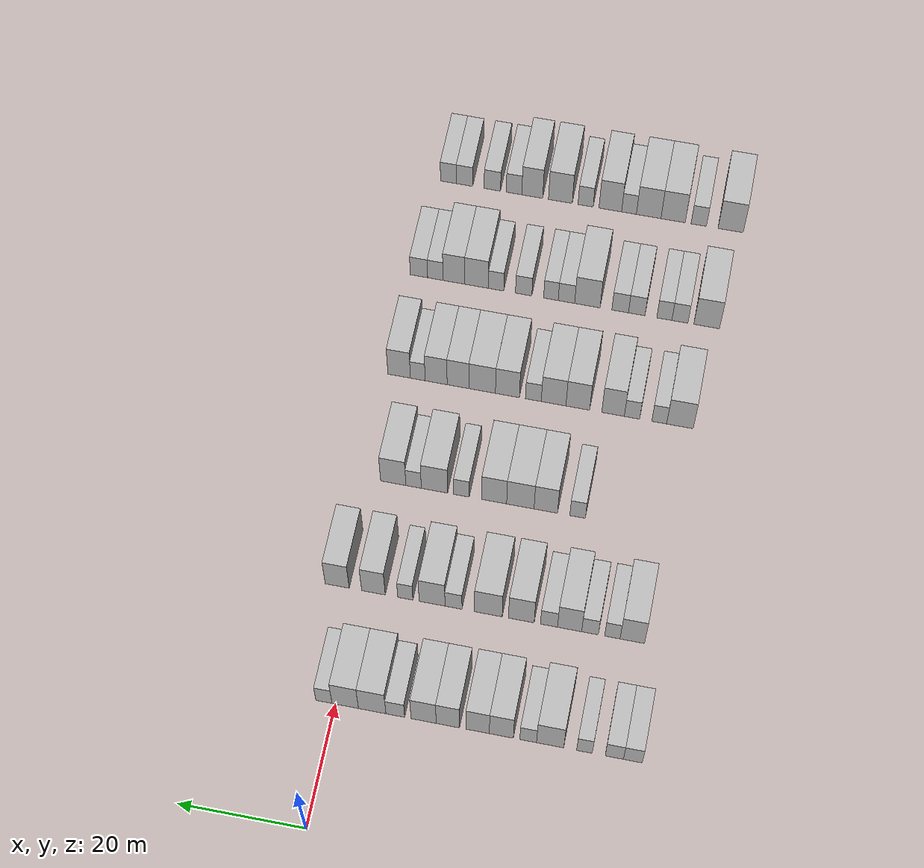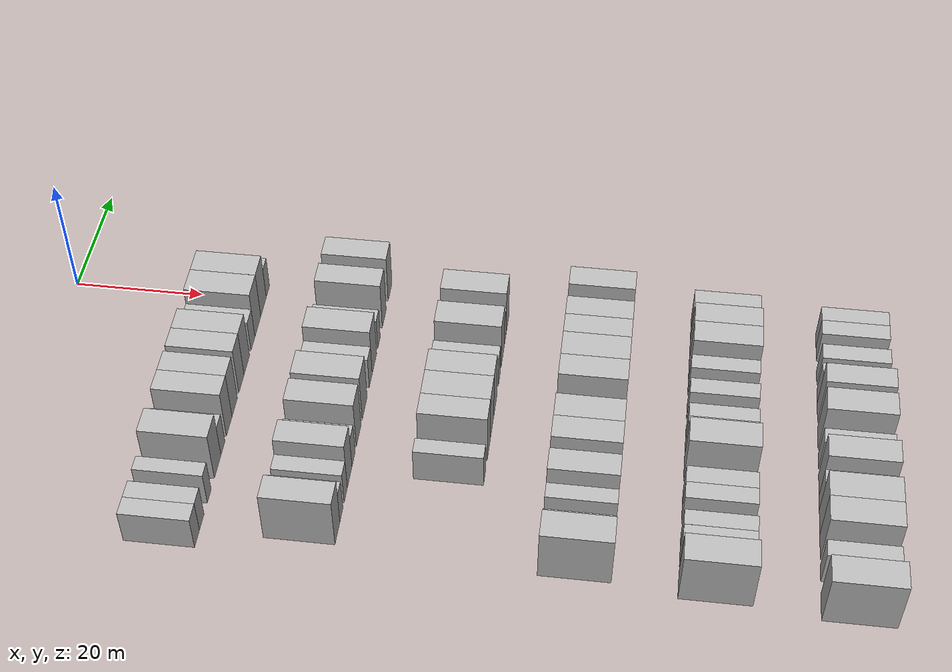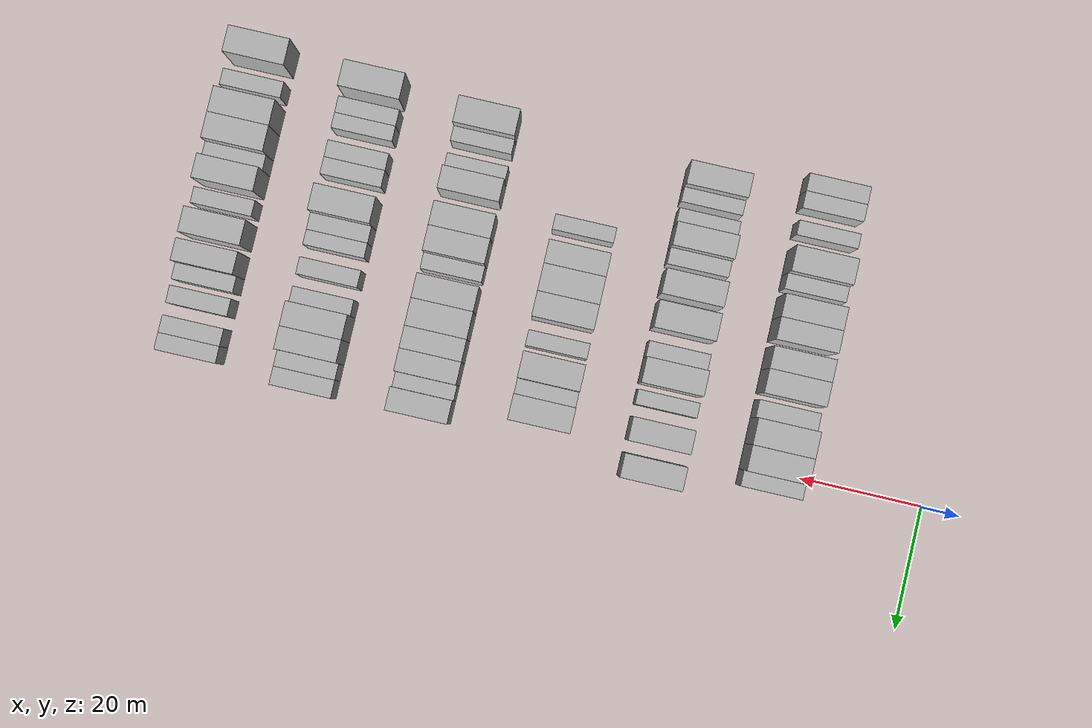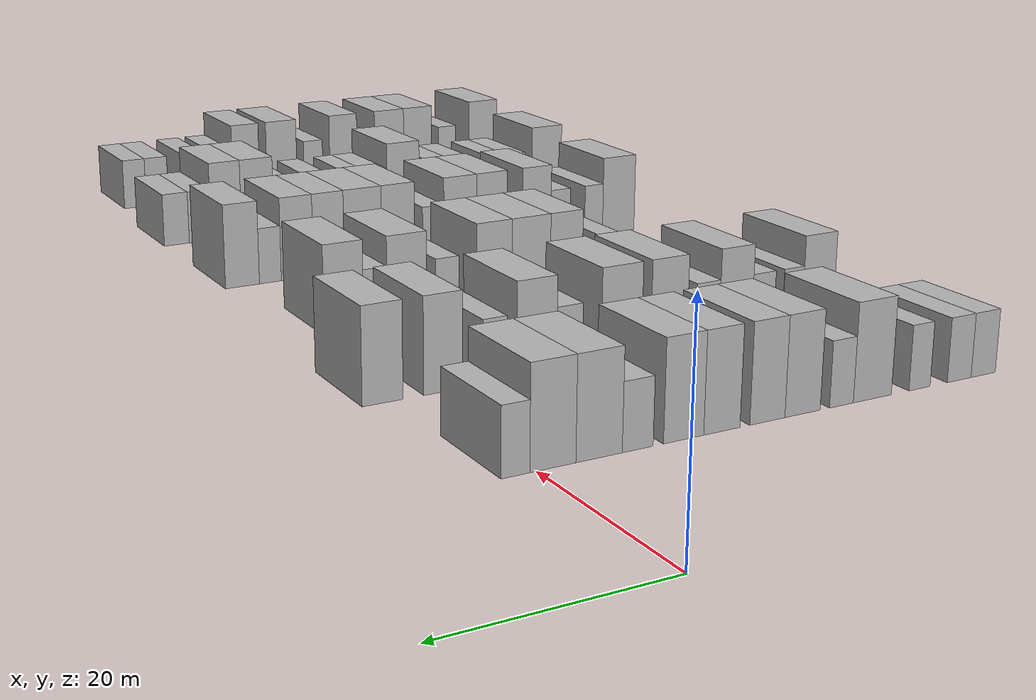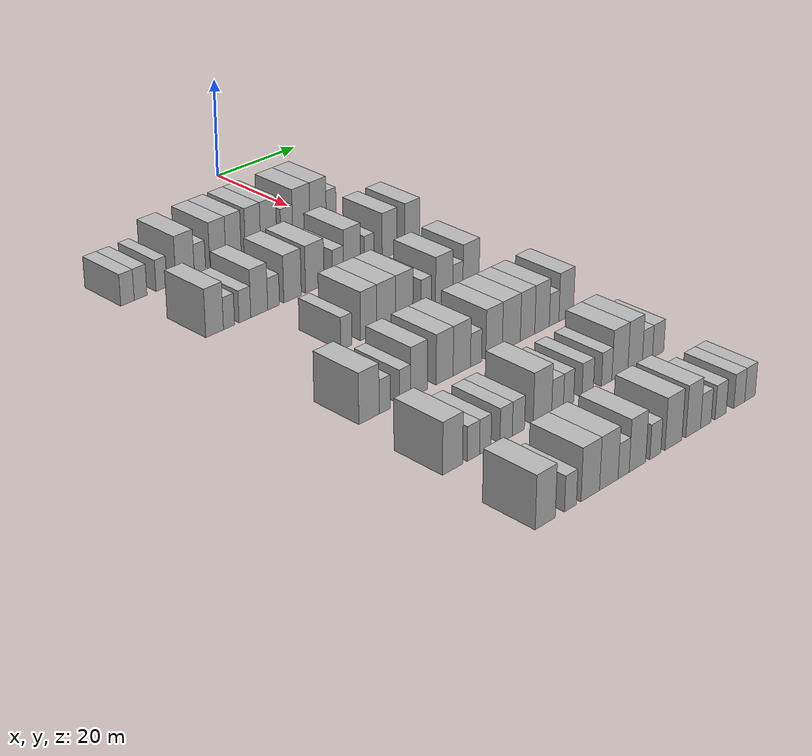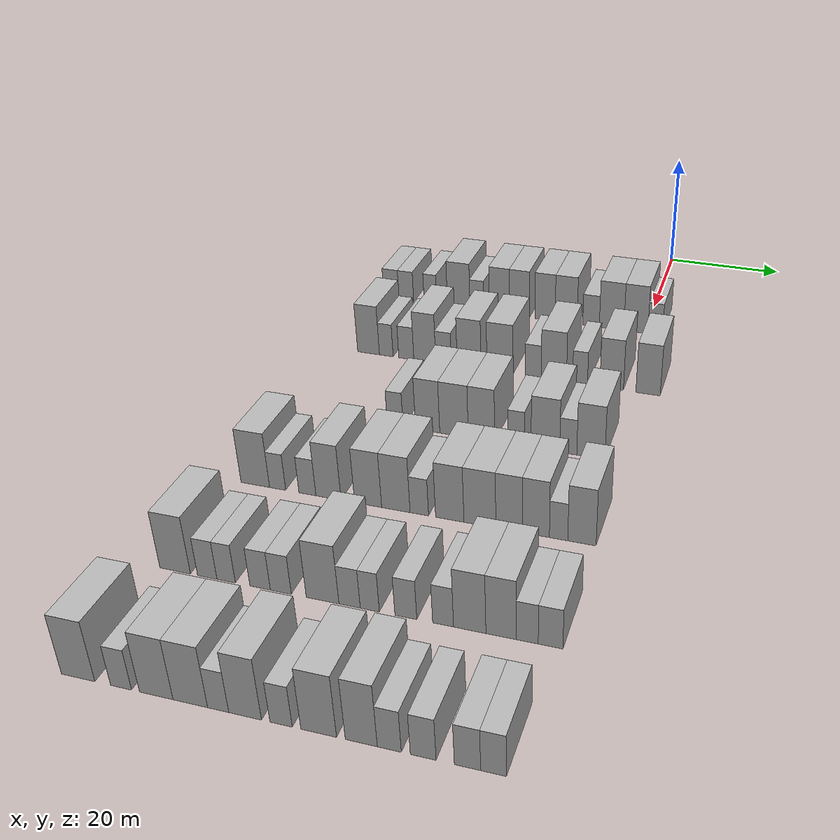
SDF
<sdf version="1.6">
 <world name="default">
  <model name="building_81">
   <static>1</static>
   <pose>25.0000 -46.2930 0 0.000000 0.000000 0.000000</pose>
   <link name="link">
    <pose>0 0 3.00 0 0 0</pose>
    <collision name="collision"><geometry><box><size>10.0000 2.9089 6.0000</size></box></geometry></collision>
    <visual name="visual">
     <cast_shadows>0</cast_shadows>
     <geometry><box><size>10.0000 2.9089 6.0000</size></box></geometry>
     <material>
      <script>
       <uri>model://HANNAS_wall/materials/scripts</uri>
       <uri>model://HANNAS_wall/materials/textures</uri>
       <name>vrc/HANNAS_wall</name>
      </script>
     </material>
    </visual>
   </link>
  </model>
  <model name="building_82">
   <static>1</static>
   <pose>25.0000 -43.4327 0 0.000000 0.000000 0.000000</pose>
   <link name="link">
    <pose>0 0 3.00 0 0 0</pose>
    <collision name="collision"><geometry><box><size>10.0000 2.8117 6.0000</size></box></geometry></collision>
    <visual name="visual">
     <cast_shadows>0</cast_shadows>
     <geometry><box><size>10.0000 2.8117 6.0000</size></box></geometry>
     <material>
      <script>
       <uri>model://HANNAS_wall/materials/scripts</uri>
       <uri>model://HANNAS_wall/materials/textures</uri>
       <name>vrc/HANNAS_wall</name>
      </script>
     </material>
    </visual>
   </link>
  </model>
  <model name="building_83">
   <static>1</static>
   <pose>25.0000 -38.8175 0 0.000000 0.000000 0.000000</pose>
   <link name="link">
    <pose>0 0 3.00 0 0 0</pose>
    <collision name="collision"><geometry><box><size>10.0000 2.4189 6.0000</size></box></geometry></collision>
    <visual name="visual">
     <cast_shadows>0</cast_shadows>
     <geometry><box><size>10.0000 2.4189 6.0000</size></box></geometry>
     <material>
      <script>
       <uri>model://HANNAS_wall/materials/scripts</uri>
       <uri>model://HANNAS_wall/materials/textures</uri>
       <name>vrc/HANNAS_wall</name>
      </script>
     </material>
    </visual>
   </link>
  </model>
  <model name="building_84">
   <static>1</static>
   <pose>25.0000 -33.4978 0 0.000000 0.000000 0.000000</pose>
   <link name="link">
    <pose>0 0 4.50 0 0 0</pose>
    <collision name="collision"><geometry><box><size>10.0000 4.2204 9.0000</size></box></geometry></collision>
    <visual name="visual">
     <cast_shadows>0</cast_shadows>
     <geometry><box><size>10.0000 4.2204 9.0000</size></box></geometry>
     <material>
      <script>
       <uri>model://HANNAS_wall/materials/scripts</uri>
       <uri>model://HANNAS_wall/materials/textures</uri>
       <name>vrc/HANNAS_wall</name>
      </script>
     </material>
    </visual>
   </link>
  </model>
  <model name="building_85">
   <static>1</static>
   <pose>25.0000 -30.0917 0 0.000000 0.000000 0.000000</pose>
   <link name="link">
    <pose>0 0 3.00 0 0 0</pose>
    <collision name="collision"><geometry><box><size>10.0000 2.5917 6.0000</size></box></geometry></collision>
    <visual name="visual">
     <cast_shadows>0</cast_shadows>
     <geometry><box><size>10.0000 2.5917 6.0000</size></box></geometry>
     <material>
      <script>
       <uri>model://HANNAS_wall/materials/scripts</uri>
       <uri>model://HANNAS_wall/materials/textures</uri>
       <name>vrc/HANNAS_wall</name>
      </script>
     </material>
    </visual>
   </link>
  </model>
  <model name="building_86">
   <static>1</static>
   <pose>25.0000 -25.9251 0 0.000000 0.000000 0.000000</pose>
   <link name="link">
    <pose>0 0 4.50 0 0 0</pose>
    <collision name="collision"><geometry><box><size>10.0000 3.7415 9.0000</size></box></geometry></collision>
    <visual name="visual">
     <cast_shadows>0</cast_shadows>
     <geometry><box><size>10.0000 3.7415 9.0000</size></box></geometry>
     <material>
      <script>
       <uri>model://HANNAS_wall/materials/scripts</uri>
       <uri>model://HANNAS_wall/materials/textures</uri>
       <name>vrc/HANNAS_wall</name>
      </script>
     </material>
    </visual>
   </link>
  </model>
  <model name="building_87">
   <static>1</static>
   <pose>25.0000 -22.2353 0 0.000000 0.000000 0.000000</pose>
   <link name="link">
    <pose>0 0 4.50 0 0 0</pose>
    <collision name="collision"><geometry><box><size>10.0000 3.6381 9.0000</size></box></geometry></collision>
    <visual name="visual">
     <cast_shadows>0</cast_shadows>
     <geometry><box><size>10.0000 3.6381 9.0000</size></box></geometry>
     <material>
      <script>
       <uri>model://HANNAS_wall/materials/scripts</uri>
       <uri>model://HANNAS_wall/materials/textures</uri>
       <name>vrc/HANNAS_wall</name>
      </script>
     </material>
    </visual>
   </link>
  </model>
  <model name="building_88">
   <static>1</static>
   <pose>25.0000 -17.5931 0 0.000000 0.000000 0.000000</pose>
   <link name="link">
    <pose>0 0 4.50 0 0 0</pose>
    <collision name="collision"><geometry><box><size>10.0000 3.6464 9.0000</size></box></geometry></collision>
    <visual name="visual">
     <cast_shadows>0</cast_shadows>
     <geometry><box><size>10.0000 3.6464 9.0000</size></box></geometry>
     <material>
      <script>
       <uri>model://HANNAS_wall/materials/scripts</uri>
       <uri>model://HANNAS_wall/materials/textures</uri>
       <name>vrc/HANNAS_wall</name>
      </script>
     </material>
    </visual>
   </link>
  </model>
  <model name="building_89">
   <static>1</static>
   <pose>25.0000 -13.7994 0 0.000000 0.000000 0.000000</pose>
   <link name="link">
    <pose>0 0 4.50 0 0 0</pose>
    <collision name="collision"><geometry><box><size>10.0000 3.9409 9.0000</size></box></geometry></collision>
    <visual name="visual">
     <cast_shadows>0</cast_shadows>
     <geometry><box><size>10.0000 3.9409 9.0000</size></box></geometry>
     <material>
      <script>
       <uri>model://HANNAS_wall/materials/scripts</uri>
       <uri>model://HANNAS_wall/materials/textures</uri>
       <name>vrc/HANNAS_wall</name>
      </script>
     </material>
    </visual>
   </link>
  </model>
  <model name="building_90">
   <static>1</static>
   <pose>25.0000 -9.3594 0 0.000000 0.000000 0.000000</pose>
   <link name="link">
    <pose>0 0 3.00 0 0 0</pose>
    <collision name="collision"><geometry><box><size>10.0000 2.9392 6.0000</size></box></geometry></collision>
    <visual name="visual">
     <cast_shadows>0</cast_shadows>
     <geometry><box><size>10.0000 2.9392 6.0000</size></box></geometry>
     <material>
      <script>
       <uri>model://HANNAS_wall/materials/scripts</uri>
       <uri>model://HANNAS_wall/materials/textures</uri>
       <name>vrc/HANNAS_wall</name>
      </script>
     </material>
    </visual>
   </link>
  </model>
  <model name="building_91">
   <static>1</static>
   <pose>25.0000 -5.7333 0 0.000000 0.000000 0.000000</pose>
   <link name="link">
    <pose>0 0 4.50 0 0 0</pose>
    <collision name="collision"><geometry><box><size>10.0000 4.3129 9.0000</size></box></geometry></collision>
    <visual name="visual">
     <cast_shadows>0</cast_shadows>
     <geometry><box><size>10.0000 4.3129 9.0000</size></box></geometry>
     <material>
      <script>
       <uri>model://HANNAS_wall/materials/scripts</uri>
       <uri>model://HANNAS_wall/materials/textures</uri>
       <name>vrc/HANNAS_wall</name>
      </script>
     </material>
    </visual>
   </link>
  </model>
  <model name="building_92">
   <static>1</static>
   <pose>25.0000 -1.4949 0 0.000000 0.000000 0.000000</pose>
   <link name="link">
    <pose>0 0 4.50 0 0 0</pose>
    <collision name="collision"><geometry><box><size>10.0000 4.1638 9.0000</size></box></geometry></collision>
    <visual name="visual">
     <cast_shadows>0</cast_shadows>
     <geometry><box><size>10.0000 4.1638 9.0000</size></box></geometry>
     <material>
      <script>
       <uri>model://HANNAS_wall/materials/scripts</uri>
       <uri>model://HANNAS_wall/materials/textures</uri>
       <name>vrc/HANNAS_wall</name>
      </script>
     </material>
    </visual>
   </link>
  </model>
  <model name="building_93">
   <static>1</static>
   <pose>25.0000 1.8575 0 0.000000 0.000000 0.000000</pose>
   <link name="link">
    <pose>0 0 3.00 0 0 0</pose>
    <collision name="collision"><geometry><box><size>10.0000 2.5411 6.0000</size></box></geometry></collision>
    <visual name="visual">
     <cast_shadows>0</cast_shadows>
     <geometry><box><size>10.0000 2.5411 6.0000</size></box></geometry>
     <material>
      <script>
       <uri>model://HANNAS_wall/materials/scripts</uri>
       <uri>model://HANNAS_wall/materials/textures</uri>
       <name>vrc/HANNAS_wall</name>
      </script>
     </material>
    </visual>
   </link>
  </model>
  <model name="building_262">
   <static>1</static>
   <pose>44.0000 -43.0210 0 0.000000 0.000000 0.000000</pose>
   <link name="link">
    <pose>0 0 4.50 0 0 0</pose>
    <collision name="collision"><geometry><box><size>10.0000 3.8725 9.0000</size></box></geometry></collision>
    <visual name="visual">
     <cast_shadows>0</cast_shadows>
     <geometry><box><size>10.0000 3.8725 9.0000</size></box></geometry>
     <material>
      <script>
       <uri>model://HANNAS_wall/materials/scripts</uri>
       <uri>model://HANNAS_wall/materials/textures</uri>
       <name>vrc/HANNAS_wall</name>
      </script>
     </material>
    </visual>
   </link>
  </model>
  <model name="building_263">
   <static>1</static>
   <pose>44.0000 -39.8704 0 0.000000 0.000000 0.000000</pose>
   <link name="link">
    <pose>0 0 3.00 0 0 0</pose>
    <collision name="collision"><geometry><box><size>10.0000 2.4286 6.0000</size></box></geometry></collision>
    <visual name="visual">
     <cast_shadows>0</cast_shadows>
     <geometry><box><size>10.0000 2.4286 6.0000</size></box></geometry>
     <material>
      <script>
       <uri>model://HANNAS_wall/materials/scripts</uri>
       <uri>model://HANNAS_wall/materials/textures</uri>
       <name>vrc/HANNAS_wall</name>
      </script>
     </material>
    </visual>
   </link>
  </model>
  <model name="building_264">
   <static>1</static>
   <pose>44.0000 -36.3331 0 0.000000 0.000000 0.000000</pose>
   <link name="link">
    <pose>0 0 3.00 0 0 0</pose>
    <collision name="collision"><geometry><box><size>10.0000 2.6460 6.0000</size></box></geometry></collision>
    <visual name="visual">
     <cast_shadows>0</cast_shadows>
     <geometry><box><size>10.0000 2.6460 6.0000</size></box></geometry>
     <material>
      <script>
       <uri>model://HANNAS_wall/materials/scripts</uri>
       <uri>model://HANNAS_wall/materials/textures</uri>
       <name>vrc/HANNAS_wall</name>
      </script>
     </material>
    </visual>
   </link>
  </model>
  <model name="building_265">
   <static>1</static>
   <pose>44.0000 -33.0952 0 0.000000 0.000000 0.000000</pose>
   <link name="link">
    <pose>0 0 4.50 0 0 0</pose>
    <collision name="collision"><geometry><box><size>10.0000 3.8299 9.0000</size></box></geometry></collision>
    <visual name="visual">
     <cast_shadows>0</cast_shadows>
     <geometry><box><size>10.0000 3.8299 9.0000</size></box></geometry>
     <material>
      <script>
       <uri>model://HANNAS_wall/materials/scripts</uri>
       <uri>model://HANNAS_wall/materials/textures</uri>
       <name>vrc/HANNAS_wall</name>
      </script>
     </material>
    </visual>
   </link>
  </model>
  <model name="building_266">
   <static>1</static>
   <pose>44.0000 -29.8294 0 0.000000 0.000000 0.000000</pose>
   <link name="link">
    <pose>0 0 3.00 0 0 0</pose>
    <collision name="collision"><geometry><box><size>10.0000 2.7018 6.0000</size></box></geometry></collision>
    <visual name="visual">
     <cast_shadows>0</cast_shadows>
     <geometry><box><size>10.0000 2.7018 6.0000</size></box></geometry>
     <material>
      <script>
       <uri>model://HANNAS_wall/materials/scripts</uri>
       <uri>model://HANNAS_wall/materials/textures</uri>
       <name>vrc/HANNAS_wall</name>
      </script>
     </material>
    </visual>
   </link>
  </model>
  <model name="building_267">
   <static>1</static>
   <pose>44.0000 -25.4348 0 0.000000 0.000000 0.000000</pose>
   <link name="link">
    <pose>0 0 4.50 0 0 0</pose>
    <collision name="collision"><geometry><box><size>10.0000 4.0874 9.0000</size></box></geometry></collision>
    <visual name="visual">
     <cast_shadows>0</cast_shadows>
     <geometry><box><size>10.0000 4.0874 9.0000</size></box></geometry>
     <material>
      <script>
       <uri>model://HANNAS_wall/materials/scripts</uri>
       <uri>model://HANNAS_wall/materials/textures</uri>
       <name>vrc/HANNAS_wall</name>
      </script>
     </material>
    </visual>
   </link>
  </model>
  <model name="building_268">
   <static>1</static>
   <pose>44.0000 -20.1846 0 0.000000 0.000000 0.000000</pose>
   <link name="link">
    <pose>0 0 4.50 0 0 0</pose>
    <collision name="collision"><geometry><box><size>10.0000 4.4129 9.0000</size></box></geometry></collision>
    <visual name="visual">
     <cast_shadows>0</cast_shadows>
     <geometry><box><size>10.0000 4.4129 9.0000</size></box></geometry>
     <material>
      <script>
       <uri>model://HANNAS_wall/materials/scripts</uri>
       <uri>model://HANNAS_wall/materials/textures</uri>
       <name>vrc/HANNAS_wall</name>
      </script>
     </material>
    </visual>
   </link>
  </model>
  <model name="building_269">
   <static>1</static>
   <pose>44.0000 -14.6228 0 0.000000 0.000000 0.000000</pose>
   <link name="link">
    <pose>0 0 3.00 0 0 0</pose>
    <collision name="collision"><geometry><box><size>10.0000 2.7107 6.0000</size></box></geometry></collision>
    <visual name="visual">
     <cast_shadows>0</cast_shadows>
     <geometry><box><size>10.0000 2.7107 6.0000</size></box></geometry>
     <material>
      <script>
       <uri>model://HANNAS_wall/materials/scripts</uri>
       <uri>model://HANNAS_wall/materials/textures</uri>
       <name>vrc/HANNAS_wall</name>
      </script>
     </material>
    </visual>
   </link>
  </model>
  <model name="building_270">
   <static>1</static>
   <pose>44.0000 -11.1909 0 0.000000 0.000000 0.000000</pose>
   <link name="link">
    <pose>0 0 4.50 0 0 0</pose>
    <collision name="collision"><geometry><box><size>10.0000 4.1532 9.0000</size></box></geometry></collision>
    <visual name="visual">
     <cast_shadows>0</cast_shadows>
     <geometry><box><size>10.0000 4.1532 9.0000</size></box></geometry>
     <material>
      <script>
       <uri>model://HANNAS_wall/materials/scripts</uri>
       <uri>model://HANNAS_wall/materials/textures</uri>
       <name>vrc/HANNAS_wall</name>
      </script>
     </material>
    </visual>
   </link>
  </model>
  <model name="building_271">
   <static>1</static>
   <pose>44.0000 -6.8982 0 0.000000 0.000000 0.000000</pose>
   <link name="link">
    <pose>0 0 3.00 0 0 0</pose>
    <collision name="collision"><geometry><box><size>10.0000 2.4321 6.0000</size></box></geometry></collision>
    <visual name="visual">
     <cast_shadows>0</cast_shadows>
     <geometry><box><size>10.0000 2.4321 6.0000</size></box></geometry>
     <material>
      <script>
       <uri>model://HANNAS_wall/materials/scripts</uri>
       <uri>model://HANNAS_wall/materials/textures</uri>
       <name>vrc/HANNAS_wall</name>
      </script>
     </material>
    </visual>
   </link>
  </model>
  <model name="building_272">
   <static>1</static>
   <pose>44.0000 -1.7785 0 0.000000 0.000000 0.000000</pose>
   <link name="link">
    <pose>0 0 4.50 0 0 0</pose>
    <collision name="collision"><geometry><box><size>10.0000 3.8074 9.0000</size></box></geometry></collision>
    <visual name="visual">
     <cast_shadows>0</cast_shadows>
     <geometry><box><size>10.0000 3.8074 9.0000</size></box></geometry>
     <material>
      <script>
       <uri>model://HANNAS_wall/materials/scripts</uri>
       <uri>model://HANNAS_wall/materials/textures</uri>
       <name>vrc/HANNAS_wall</name>
      </script>
     </material>
    </visual>
   </link>
  </model>
  <model name="building_273">
   <static>1</static>
   <pose>44.0000 4.0592 0 0.000000 0.000000 0.000000</pose>
   <link name="link">
    <pose>0 0 4.50 0 0 0</pose>
    <collision name="collision"><geometry><box><size>10.0000 3.8681 9.0000</size></box></geometry></collision>
    <visual name="visual">
     <cast_shadows>0</cast_shadows>
     <geometry><box><size>10.0000 3.8681 9.0000</size></box></geometry>
     <material>
      <script>
       <uri>model://HANNAS_wall/materials/scripts</uri>
       <uri>model://HANNAS_wall/materials/textures</uri>
       <name>vrc/HANNAS_wall</name>
      </script>
     </material>
    </visual>
   </link>
  </model>
  <model name="building_429">
   <static>1</static>
   <pose>63.0000 -30.9926 0 0.000000 0.000000 0.000000</pose>
   <link name="link">
    <pose>0 0 3.00 0 0 0</pose>
    <collision name="collision"><geometry><box><size>10.0000 2.5227 6.0000</size></box></geometry></collision>
    <visual name="visual">
     <cast_shadows>0</cast_shadows>
     <geometry><box><size>10.0000 2.5227 6.0000</size></box></geometry>
     <material>
      <script>
       <uri>model://HANNAS_wall/materials/scripts</uri>
       <uri>model://HANNAS_wall/materials/textures</uri>
       <name>vrc/HANNAS_wall</name>
      </script>
     </material>
    </visual>
   </link>
  </model>
  <model name="building_430">
   <static>1</static>
   <pose>63.0000 -25.8225 0 0.000000 0.000000 0.000000</pose>
   <link name="link">
    <pose>0 0 4.50 0 0 0</pose>
    <collision name="collision"><geometry><box><size>10.0000 3.8176 9.0000</size></box></geometry></collision>
    <visual name="visual">
     <cast_shadows>0</cast_shadows>
     <geometry><box><size>10.0000 3.8176 9.0000</size></box></geometry>
     <material>
      <script>
       <uri>model://HANNAS_wall/materials/scripts</uri>
       <uri>model://HANNAS_wall/materials/textures</uri>
       <name>vrc/HANNAS_wall</name>
      </script>
     </material>
    </visual>
   </link>
  </model>
  <model name="building_431">
   <static>1</static>
   <pose>63.0000 -21.6790 0 0.000000 0.000000 0.000000</pose>
   <link name="link">
    <pose>0 0 4.50 0 0 0</pose>
    <collision name="collision"><geometry><box><size>10.0000 4.4694 9.0000</size></box></geometry></collision>
    <visual name="visual">
     <cast_shadows>0</cast_shadows>
     <geometry><box><size>10.0000 4.4694 9.0000</size></box></geometry>
     <material>
      <script>
       <uri>model://HANNAS_wall/materials/scripts</uri>
       <uri>model://HANNAS_wall/materials/textures</uri>
       <name>vrc/HANNAS_wall</name>
      </script>
     </material>
    </visual>
   </link>
  </model>
  <model name="building_432">
   <static>1</static>
   <pose>63.0000 -17.4008 0 0.000000 0.000000 0.000000</pose>
   <link name="link">
    <pose>0 0 4.50 0 0 0</pose>
    <collision name="collision"><geometry><box><size>10.0000 4.0870 9.0000</size></box></geometry></collision>
    <visual name="visual">
     <cast_shadows>0</cast_shadows>
     <geometry><box><size>10.0000 4.0870 9.0000</size></box></geometry>
     <material>
      <script>
       <uri>model://HANNAS_wall/materials/scripts</uri>
       <uri>model://HANNAS_wall/materials/textures</uri>
       <name>vrc/HANNAS_wall</name>
      </script>
     </material>
    </visual>
   </link>
  </model>
  <model name="building_433">
   <static>1</static>
   <pose>63.0000 -12.0814 0 0.000000 0.000000 0.000000</pose>
   <link name="link">
    <pose>0 0 3.00 0 0 0</pose>
    <collision name="collision"><geometry><box><size>10.0000 2.5519 6.0000</size></box></geometry></collision>
    <visual name="visual">
     <cast_shadows>0</cast_shadows>
     <geometry><box><size>10.0000 2.5519 6.0000</size></box></geometry>
     <material>
      <script>
       <uri>model://HANNAS_wall/materials/scripts</uri>
       <uri>model://HANNAS_wall/materials/textures</uri>
       <name>vrc/HANNAS_wall</name>
      </script>
     </material>
    </visual>
   </link>
  </model>
  <model name="building_434">
   <static>1</static>
   <pose>63.0000 -7.6488 0 0.000000 0.000000 0.000000</pose>
   <link name="link">
    <pose>0 0 4.50 0 0 0</pose>
    <collision name="collision"><geometry><box><size>10.0000 4.3131 9.0000</size></box></geometry></collision>
    <visual name="visual">
     <cast_shadows>0</cast_shadows>
     <geometry><box><size>10.0000 4.3131 9.0000</size></box></geometry>
     <material>
      <script>
       <uri>model://HANNAS_wall/materials/scripts</uri>
       <uri>model://HANNAS_wall/materials/textures</uri>
       <name>vrc/HANNAS_wall</name>
      </script>
     </material>
    </visual>
   </link>
  </model>
  <model name="building_435">
   <static>1</static>
   <pose>63.0000 -4.2244 0 0.000000 0.000000 0.000000</pose>
   <link name="link">
    <pose>0 0 3.00 0 0 0</pose>
    <collision name="collision"><geometry><box><size>10.0000 2.5357 6.0000</size></box></geometry></collision>
    <visual name="visual">
     <cast_shadows>0</cast_shadows>
     <geometry><box><size>10.0000 2.5357 6.0000</size></box></geometry>
     <material>
      <script>
       <uri>model://HANNAS_wall/materials/scripts</uri>
       <uri>model://HANNAS_wall/materials/textures</uri>
       <name>vrc/HANNAS_wall</name>
      </script>
     </material>
    </visual>
   </link>
  </model>
  <model name="building_436">
   <static>1</static>
   <pose>63.0000 -0.8815 0 0.000000 0.000000 0.000000</pose>
   <link name="link">
    <pose>0 0 4.50 0 0 0</pose>
    <collision name="collision"><geometry><box><size>10.0000 4.1502 9.0000</size></box></geometry></collision>
    <visual name="visual">
     <cast_shadows>0</cast_shadows>
     <geometry><box><size>10.0000 4.1502 9.0000</size></box></geometry>
     <material>
      <script>
       <uri>model://HANNAS_wall/materials/scripts</uri>
       <uri>model://HANNAS_wall/materials/textures</uri>
       <name>vrc/HANNAS_wall</name>
      </script>
     </material>
    </visual>
   </link>
  </model>
  <model name="building_595">
   <static>1</static>
   <pose>82.0000 -44.5301 0 0.000000 0.000000 0.000000</pose>
   <link name="link">
    <pose>0 0 4.50 0 0 0</pose>
    <collision name="collision"><geometry><box><size>10.0000 4.3734 9.0000</size></box></geometry></collision>
    <visual name="visual">
     <cast_shadows>0</cast_shadows>
     <geometry><box><size>10.0000 4.3734 9.0000</size></box></geometry>
     <material>
      <script>
       <uri>model://HANNAS_wall/materials/scripts</uri>
       <uri>model://HANNAS_wall/materials/textures</uri>
       <name>vrc/HANNAS_wall</name>
      </script>
     </material>
    </visual>
   </link>
  </model>
  <model name="building_596">
   <static>1</static>
   <pose>82.0000 -41.1171 0 0.000000 0.000000 0.000000</pose>
   <link name="link">
    <pose>0 0 3.00 0 0 0</pose>
    <collision name="collision"><geometry><box><size>10.0000 2.4524 6.0000</size></box></geometry></collision>
    <visual name="visual">
     <cast_shadows>0</cast_shadows>
     <geometry><box><size>10.0000 2.4524 6.0000</size></box></geometry>
     <material>
      <script>
       <uri>model://HANNAS_wall/materials/scripts</uri>
       <uri>model://HANNAS_wall/materials/textures</uri>
       <name>vrc/HANNAS_wall</name>
      </script>
     </material>
    </visual>
   </link>
  </model>
  <model name="building_597">
   <static>1</static>
   <pose>82.0000 -36.6206 0 0.000000 0.000000 0.000000</pose>
   <link name="link">
    <pose>0 0 3.00 0 0 0</pose>
    <collision name="collision"><geometry><box><size>10.0000 2.5406 6.0000</size></box></geometry></collision>
    <visual name="visual">
     <cast_shadows>0</cast_shadows>
     <geometry><box><size>10.0000 2.5406 6.0000</size></box></geometry>
     <material>
      <script>
       <uri>model://HANNAS_wall/materials/scripts</uri>
       <uri>model://HANNAS_wall/materials/textures</uri>
       <name>vrc/HANNAS_wall</name>
      </script>
     </material>
    </visual>
   </link>
  </model>
  <model name="building_598">
   <static>1</static>
   <pose>82.0000 -33.4809 0 0.000000 0.000000 0.000000</pose>
   <link name="link">
    <pose>0 0 4.50 0 0 0</pose>
    <collision name="collision"><geometry><box><size>10.0000 3.7387 9.0000</size></box></geometry></collision>
    <visual name="visual">
     <cast_shadows>0</cast_shadows>
     <geometry><box><size>10.0000 3.7387 9.0000</size></box></geometry>
     <material>
      <script>
       <uri>model://HANNAS_wall/materials/scripts</uri>
       <uri>model://HANNAS_wall/materials/textures</uri>
       <name>vrc/HANNAS_wall</name>
      </script>
     </material>
    </visual>
   </link>
  </model>
  <model name="building_599">
   <static>1</static>
   <pose>82.0000 -27.6373 0 0.000000 0.000000 0.000000</pose>
   <link name="link">
    <pose>0 0 4.50 0 0 0</pose>
    <collision name="collision"><geometry><box><size>10.0000 3.9487 9.0000</size></box></geometry></collision>
    <visual name="visual">
     <cast_shadows>0</cast_shadows>
     <geometry><box><size>10.0000 3.9487 9.0000</size></box></geometry>
     <material>
      <script>
       <uri>model://HANNAS_wall/materials/scripts</uri>
       <uri>model://HANNAS_wall/materials/textures</uri>
       <name>vrc/HANNAS_wall</name>
      </script>
     </material>
    </visual>
   </link>
  </model>
  <model name="building_600">
   <static>1</static>
   <pose>82.0000 -23.6133 0 0.000000 0.000000 0.000000</pose>
   <link name="link">
    <pose>0 0 4.50 0 0 0</pose>
    <collision name="collision"><geometry><box><size>10.0000 4.0992 9.0000</size></box></geometry></collision>
    <visual name="visual">
     <cast_shadows>0</cast_shadows>
     <geometry><box><size>10.0000 4.0992 9.0000</size></box></geometry>
     <material>
      <script>
       <uri>model://HANNAS_wall/materials/scripts</uri>
       <uri>model://HANNAS_wall/materials/textures</uri>
       <name>vrc/HANNAS_wall</name>
      </script>
     </material>
    </visual>
   </link>
  </model>
  <model name="building_601">
   <static>1</static>
   <pose>82.0000 -20.2449 0 0.000000 0.000000 0.000000</pose>
   <link name="link">
    <pose>0 0 3.00 0 0 0</pose>
    <collision name="collision"><geometry><box><size>10.0000 2.6376 6.0000</size></box></geometry></collision>
    <visual name="visual">
     <cast_shadows>0</cast_shadows>
     <geometry><box><size>10.0000 2.6376 6.0000</size></box></geometry>
     <material>
      <script>
       <uri>model://HANNAS_wall/materials/scripts</uri>
       <uri>model://HANNAS_wall/materials/textures</uri>
       <name>vrc/HANNAS_wall</name>
      </script>
     </material>
    </visual>
   </link>
  </model>
  <model name="building_602">
   <static>1</static>
   <pose>82.0000 -15.9267 0 0.000000 0.000000 0.000000</pose>
   <link name="link">
    <pose>0 0 4.50 0 0 0</pose>
    <collision name="collision"><geometry><box><size>10.0000 3.9989 9.0000</size></box></geometry></collision>
    <visual name="visual">
     <cast_shadows>0</cast_shadows>
     <geometry><box><size>10.0000 3.9989 9.0000</size></box></geometry>
     <material>
      <script>
       <uri>model://HANNAS_wall/materials/scripts</uri>
       <uri>model://HANNAS_wall/materials/textures</uri>
       <name>vrc/HANNAS_wall</name>
      </script>
     </material>
    </visual>
   </link>
  </model>
  <model name="building_603">
   <static>1</static>
   <pose>82.0000 -11.7010 0 0.000000 0.000000 0.000000</pose>
   <link name="link">
    <pose>0 0 4.50 0 0 0</pose>
    <collision name="collision"><geometry><box><size>10.0000 4.4524 9.0000</size></box></geometry></collision>
    <visual name="visual">
     <cast_shadows>0</cast_shadows>
     <geometry><box><size>10.0000 4.4524 9.0000</size></box></geometry>
     <material>
      <script>
       <uri>model://HANNAS_wall/materials/scripts</uri>
       <uri>model://HANNAS_wall/materials/textures</uri>
       <name>vrc/HANNAS_wall</name>
      </script>
     </material>
    </visual>
   </link>
  </model>
  <model name="building_604">
   <static>1</static>
   <pose>82.0000 -7.6648 0 0.000000 0.000000 0.000000</pose>
   <link name="link">
    <pose>0 0 4.50 0 0 0</pose>
    <collision name="collision"><geometry><box><size>10.0000 3.6200 9.0000</size></box></geometry></collision>
    <visual name="visual">
     <cast_shadows>0</cast_shadows>
     <geometry><box><size>10.0000 3.6200 9.0000</size></box></geometry>
     <material>
      <script>
       <uri>model://HANNAS_wall/materials/scripts</uri>
       <uri>model://HANNAS_wall/materials/textures</uri>
       <name>vrc/HANNAS_wall</name>
      </script>
     </material>
    </visual>
   </link>
  </model>
  <model name="building_605">
   <static>1</static>
   <pose>82.0000 -4.0126 0 0.000000 0.000000 0.000000</pose>
   <link name="link">
    <pose>0 0 4.50 0 0 0</pose>
    <collision name="collision"><geometry><box><size>10.0000 3.6843 9.0000</size></box></geometry></collision>
    <visual name="visual">
     <cast_shadows>0</cast_shadows>
     <geometry><box><size>10.0000 3.6843 9.0000</size></box></geometry>
     <material>
      <script>
       <uri>model://HANNAS_wall/materials/scripts</uri>
       <uri>model://HANNAS_wall/materials/textures</uri>
       <name>vrc/HANNAS_wall</name>
      </script>
     </material>
    </visual>
   </link>
  </model>
  <model name="building_606">
   <static>1</static>
   <pose>82.0000 -0.9319 0 0.000000 0.000000 0.000000</pose>
   <link name="link">
    <pose>0 0 3.00 0 0 0</pose>
    <collision name="collision"><geometry><box><size>10.0000 2.4771 6.0000</size></box></geometry></collision>
    <visual name="visual">
     <cast_shadows>0</cast_shadows>
     <geometry><box><size>10.0000 2.4771 6.0000</size></box></geometry>
     <material>
      <script>
       <uri>model://HANNAS_wall/materials/scripts</uri>
       <uri>model://HANNAS_wall/materials/textures</uri>
       <name>vrc/HANNAS_wall</name>
      </script>
     </material>
    </visual>
   </link>
  </model>
  <model name="building_607">
   <static>1</static>
   <pose>82.0000 2.1966 0 0.000000 0.000000 0.000000</pose>
   <link name="link">
    <pose>0 0 4.50 0 0 0</pose>
    <collision name="collision"><geometry><box><size>10.0000 3.7800 9.0000</size></box></geometry></collision>
    <visual name="visual">
     <cast_shadows>0</cast_shadows>
     <geometry><box><size>10.0000 3.7800 9.0000</size></box></geometry>
     <material>
      <script>
       <uri>model://HANNAS_wall/materials/scripts</uri>
       <uri>model://HANNAS_wall/materials/textures</uri>
       <name>vrc/HANNAS_wall</name>
      </script>
     </material>
    </visual>
   </link>
  </model>
  <model name="building_769">
   <static>1</static>
   <pose>101.0000 -46.0266 0 0.000000 0.000000 0.000000</pose>
   <link name="link">
    <pose>0 0 4.50 0 0 0</pose>
    <collision name="collision"><geometry><box><size>10.0000 4.3106 9.0000</size></box></geometry></collision>
    <visual name="visual">
     <cast_shadows>0</cast_shadows>
     <geometry><box><size>10.0000 4.3106 9.0000</size></box></geometry>
     <material>
      <script>
       <uri>model://HANNAS_wall/materials/scripts</uri>
       <uri>model://HANNAS_wall/materials/textures</uri>
       <name>vrc/HANNAS_wall</name>
      </script>
     </material>
    </visual>
   </link>
  </model>
  <model name="building_770">
   <static>1</static>
   <pose>101.0000 -41.5201 0 0.000000 0.000000 0.000000</pose>
   <link name="link">
    <pose>0 0 3.00 0 0 0</pose>
    <collision name="collision"><geometry><box><size>10.0000 2.7024 6.0000</size></box></geometry></collision>
    <visual name="visual">
     <cast_shadows>0</cast_shadows>
     <geometry><box><size>10.0000 2.7024 6.0000</size></box></geometry>
     <material>
      <script>
       <uri>model://HANNAS_wall/materials/scripts</uri>
       <uri>model://HANNAS_wall/materials/textures</uri>
       <name>vrc/HANNAS_wall</name>
      </script>
     </material>
    </visual>
   </link>
  </model>
  <model name="building_771">
   <static>1</static>
   <pose>101.0000 -38.9002 0 0.000000 0.000000 0.000000</pose>
   <link name="link">
    <pose>0 0 3.00 0 0 0</pose>
    <collision name="collision"><geometry><box><size>10.0000 2.5373 6.0000</size></box></geometry></collision>
    <visual name="visual">
     <cast_shadows>0</cast_shadows>
     <geometry><box><size>10.0000 2.5373 6.0000</size></box></geometry>
     <material>
      <script>
       <uri>model://HANNAS_wall/materials/scripts</uri>
       <uri>model://HANNAS_wall/materials/textures</uri>
       <name>vrc/HANNAS_wall</name>
      </script>
     </material>
    </visual>
   </link>
  </model>
  <model name="building_772">
   <static>1</static>
   <pose>101.0000 -34.2424 0 0.000000 0.000000 0.000000</pose>
   <link name="link">
    <pose>0 0 3.00 0 0 0</pose>
    <collision name="collision"><geometry><box><size>10.0000 2.7784 6.0000</size></box></geometry></collision>
    <visual name="visual">
     <cast_shadows>0</cast_shadows>
     <geometry><box><size>10.0000 2.7784 6.0000</size></box></geometry>
     <material>
      <script>
       <uri>model://HANNAS_wall/materials/scripts</uri>
       <uri>model://HANNAS_wall/materials/textures</uri>
       <name>vrc/HANNAS_wall</name>
      </script>
     </material>
    </visual>
   </link>
  </model>
  <model name="building_773">
   <static>1</static>
   <pose>101.0000 -31.4450 0 0.000000 0.000000 0.000000</pose>
   <link name="link">
    <pose>0 0 3.00 0 0 0</pose>
    <collision name="collision"><geometry><box><size>10.0000 2.8164 6.0000</size></box></geometry></collision>
    <visual name="visual">
     <cast_shadows>0</cast_shadows>
     <geometry><box><size>10.0000 2.8164 6.0000</size></box></geometry>
     <material>
      <script>
       <uri>model://HANNAS_wall/materials/scripts</uri>
       <uri>model://HANNAS_wall/materials/textures</uri>
       <name>vrc/HANNAS_wall</name>
      </script>
     </material>
    </visual>
   </link>
  </model>
  <model name="building_774">
   <static>1</static>
   <pose>101.0000 -25.8760 0 0.000000 0.000000 0.000000</pose>
   <link name="link">
    <pose>0 0 4.50 0 0 0</pose>
    <collision name="collision"><geometry><box><size>10.0000 4.3215 9.0000</size></box></geometry></collision>
    <visual name="visual">
     <cast_shadows>0</cast_shadows>
     <geometry><box><size>10.0000 4.3215 9.0000</size></box></geometry>
     <material>
      <script>
       <uri>model://HANNAS_wall/materials/scripts</uri>
       <uri>model://HANNAS_wall/materials/textures</uri>
       <name>vrc/HANNAS_wall</name>
      </script>
     </material>
    </visual>
   </link>
  </model>
  <model name="building_775">
   <static>1</static>
   <pose>101.0000 -22.3218 0 0.000000 0.000000 0.000000</pose>
   <link name="link">
    <pose>0 0 3.00 0 0 0</pose>
    <collision name="collision"><geometry><box><size>10.0000 2.7869 6.0000</size></box></geometry></collision>
    <visual name="visual">
     <cast_shadows>0</cast_shadows>
     <geometry><box><size>10.0000 2.7869 6.0000</size></box></geometry>
     <material>
      <script>
       <uri>model://HANNAS_wall/materials/scripts</uri>
       <uri>model://HANNAS_wall/materials/textures</uri>
       <name>vrc/HANNAS_wall</name>
      </script>
     </material>
    </visual>
   </link>
  </model>
  <model name="building_776">
   <static>1</static>
   <pose>101.0000 -19.6891 0 0.000000 0.000000 0.000000</pose>
   <link name="link">
    <pose>0 0 3.00 0 0 0</pose>
    <collision name="collision"><geometry><box><size>10.0000 2.4786 6.0000</size></box></geometry></collision>
    <visual name="visual">
     <cast_shadows>0</cast_shadows>
     <geometry><box><size>10.0000 2.4786 6.0000</size></box></geometry>
     <material>
      <script>
       <uri>model://HANNAS_wall/materials/scripts</uri>
       <uri>model://HANNAS_wall/materials/textures</uri>
       <name>vrc/HANNAS_wall</name>
      </script>
     </material>
    </visual>
   </link>
  </model>
  <model name="building_777">
   <static>1</static>
   <pose>101.0000 -15.0525 0 0.000000 0.000000 0.000000</pose>
   <link name="link">
    <pose>0 0 3.00 0 0 0</pose>
    <collision name="collision"><geometry><box><size>10.0000 2.7947 6.0000</size></box></geometry></collision>
    <visual name="visual">
     <cast_shadows>0</cast_shadows>
     <geometry><box><size>10.0000 2.7947 6.0000</size></box></geometry>
     <material>
      <script>
       <uri>model://HANNAS_wall/materials/scripts</uri>
       <uri>model://HANNAS_wall/materials/textures</uri>
       <name>vrc/HANNAS_wall</name>
      </script>
     </material>
    </visual>
   </link>
  </model>
  <model name="building_778">
   <static>1</static>
   <pose>101.0000 -10.3406 0 0.000000 0.000000 0.000000</pose>
   <link name="link">
    <pose>0 0 3.00 0 0 0</pose>
    <collision name="collision"><geometry><box><size>10.0000 2.6291 6.0000</size></box></geometry></collision>
    <visual name="visual">
     <cast_shadows>0</cast_shadows>
     <geometry><box><size>10.0000 2.6291 6.0000</size></box></geometry>
     <material>
      <script>
       <uri>model://HANNAS_wall/materials/scripts</uri>
       <uri>model://HANNAS_wall/materials/textures</uri>
       <name>vrc/HANNAS_wall</name>
      </script>
     </material>
    </visual>
   </link>
  </model>
  <model name="building_779">
   <static>1</static>
   <pose>101.0000 -7.0160 0 0.000000 0.000000 0.000000</pose>
   <link name="link">
    <pose>0 0 4.50 0 0 0</pose>
    <collision name="collision"><geometry><box><size>10.0000 4.0201 9.0000</size></box></geometry></collision>
    <visual name="visual">
     <cast_shadows>0</cast_shadows>
     <geometry><box><size>10.0000 4.0201 9.0000</size></box></geometry>
     <material>
      <script>
       <uri>model://HANNAS_wall/materials/scripts</uri>
       <uri>model://HANNAS_wall/materials/textures</uri>
       <name>vrc/HANNAS_wall</name>
      </script>
     </material>
    </visual>
   </link>
  </model>
  <model name="building_780">
   <static>1</static>
   <pose>101.0000 -3.1424 0 0.000000 0.000000 0.000000</pose>
   <link name="link">
    <pose>0 0 4.50 0 0 0</pose>
    <collision name="collision"><geometry><box><size>10.0000 3.7270 9.0000</size></box></geometry></collision>
    <visual name="visual">
     <cast_shadows>0</cast_shadows>
     <geometry><box><size>10.0000 3.7270 9.0000</size></box></geometry>
     <material>
      <script>
       <uri>model://HANNAS_wall/materials/scripts</uri>
       <uri>model://HANNAS_wall/materials/textures</uri>
       <name>vrc/HANNAS_wall</name>
      </script>
     </material>
    </visual>
   </link>
  </model>
  <model name="building_781">
   <static>1</static>
   <pose>101.0000 0.0449 0 0.000000 0.000000 0.000000</pose>
   <link name="link">
    <pose>0 0 3.00 0 0 0</pose>
    <collision name="collision"><geometry><box><size>10.0000 2.6476 6.0000</size></box></geometry></collision>
    <visual name="visual">
     <cast_shadows>0</cast_shadows>
     <geometry><box><size>10.0000 2.6476 6.0000</size></box></geometry>
     <material>
      <script>
       <uri>model://HANNAS_wall/materials/scripts</uri>
       <uri>model://HANNAS_wall/materials/textures</uri>
       <name>vrc/HANNAS_wall</name>
      </script>
     </material>
    </visual>
   </link>
  </model>
  <model name="building_782">
   <static>1</static>
   <pose>101.0000 2.8542 0 0.000000 0.000000 0.000000</pose>
   <link name="link">
    <pose>0 0 3.00 0 0 0</pose>
    <collision name="collision"><geometry><box><size>10.0000 2.9711 6.0000</size></box></geometry></collision>
    <visual name="visual">
     <cast_shadows>0</cast_shadows>
     <geometry><box><size>10.0000 2.9711 6.0000</size></box></geometry>
     <material>
      <script>
       <uri>model://HANNAS_wall/materials/scripts</uri>
       <uri>model://HANNAS_wall/materials/textures</uri>
       <name>vrc/HANNAS_wall</name>
      </script>
     </material>
    </visual>
   </link>
  </model>
  <model name="building_925">
   <static>1</static>
   <pose>120.0000 -47.2340 0 0.000000 0.000000 0.000000</pose>
   <link name="link">
    <pose>0 0 4.50 0 0 0</pose>
    <collision name="collision"><geometry><box><size>10.0000 4.3068 9.0000</size></box></geometry></collision>
    <visual name="visual">
     <cast_shadows>0</cast_shadows>
     <geometry><box><size>10.0000 4.3068 9.0000</size></box></geometry>
     <material>
      <script>
       <uri>model://HANNAS_wall/materials/scripts</uri>
       <uri>model://HANNAS_wall/materials/textures</uri>
       <name>vrc/HANNAS_wall</name>
      </script>
     </material>
    </visual>
   </link>
  </model>
  <model name="building_926">
   <static>1</static>
   <pose>120.0000 -41.7572 0 0.000000 0.000000 0.000000</pose>
   <link name="link">
    <pose>0 0 3.00 0 0 0</pose>
    <collision name="collision"><geometry><box><size>10.0000 2.6468 6.0000</size></box></geometry></collision>
    <visual name="visual">
     <cast_shadows>0</cast_shadows>
     <geometry><box><size>10.0000 2.6468 6.0000</size></box></geometry>
     <material>
      <script>
       <uri>model://HANNAS_wall/materials/scripts</uri>
       <uri>model://HANNAS_wall/materials/textures</uri>
       <name>vrc/HANNAS_wall</name>
      </script>
     </material>
    </visual>
   </link>
  </model>
  <model name="building_927">
   <static>1</static>
   <pose>120.0000 -37.3449 0 0.000000 0.000000 0.000000</pose>
   <link name="link">
    <pose>0 0 4.50 0 0 0</pose>
    <collision name="collision"><geometry><box><size>10.0000 4.1778 9.0000</size></box></geometry></collision>
    <visual name="visual">
     <cast_shadows>0</cast_shadows>
     <geometry><box><size>10.0000 4.1778 9.0000</size></box></geometry>
     <material>
      <script>
       <uri>model://HANNAS_wall/materials/scripts</uri>
       <uri>model://HANNAS_wall/materials/textures</uri>
       <name>vrc/HANNAS_wall</name>
      </script>
     </material>
    </visual>
   </link>
  </model>
  <model name="building_928">
   <static>1</static>
   <pose>120.0000 -33.1360 0 0.000000 0.000000 0.000000</pose>
   <link name="link">
    <pose>0 0 4.50 0 0 0</pose>
    <collision name="collision"><geometry><box><size>10.0000 4.2401 9.0000</size></box></geometry></collision>
    <visual name="visual">
     <cast_shadows>0</cast_shadows>
     <geometry><box><size>10.0000 4.2401 9.0000</size></box></geometry>
     <material>
      <script>
       <uri>model://HANNAS_wall/materials/scripts</uri>
       <uri>model://HANNAS_wall/materials/textures</uri>
       <name>vrc/HANNAS_wall</name>
      </script>
     </material>
    </visual>
   </link>
  </model>
  <model name="building_929">
   <static>1</static>
   <pose>120.0000 -29.7364 0 0.000000 0.000000 0.000000</pose>
   <link name="link">
    <pose>0 0 3.00 0 0 0</pose>
    <collision name="collision"><geometry><box><size>10.0000 2.5590 6.0000</size></box></geometry></collision>
    <visual name="visual">
     <cast_shadows>0</cast_shadows>
     <geometry><box><size>10.0000 2.5590 6.0000</size></box></geometry>
     <material>
      <script>
       <uri>model://HANNAS_wall/materials/scripts</uri>
       <uri>model://HANNAS_wall/materials/textures</uri>
       <name>vrc/HANNAS_wall</name>
      </script>
     </material>
    </visual>
   </link>
  </model>
  <model name="building_930">
   <static>1</static>
   <pose>120.0000 -26.5004 0 0.000000 0.000000 0.000000</pose>
   <link name="link">
    <pose>0 0 4.50 0 0 0</pose>
    <collision name="collision"><geometry><box><size>10.0000 3.9130 9.0000</size></box></geometry></collision>
    <visual name="visual">
     <cast_shadows>0</cast_shadows>
     <geometry><box><size>10.0000 3.9130 9.0000</size></box></geometry>
     <material>
      <script>
       <uri>model://HANNAS_wall/materials/scripts</uri>
       <uri>model://HANNAS_wall/materials/textures</uri>
       <name>vrc/HANNAS_wall</name>
      </script>
     </material>
    </visual>
   </link>
  </model>
  <model name="building_931">
   <static>1</static>
   <pose>120.0000 -22.2276 0 0.000000 0.000000 0.000000</pose>
   <link name="link">
    <pose>0 0 3.00 0 0 0</pose>
    <collision name="collision"><geometry><box><size>10.0000 2.6326 6.0000</size></box></geometry></collision>
    <visual name="visual">
     <cast_shadows>0</cast_shadows>
     <geometry><box><size>10.0000 2.6326 6.0000</size></box></geometry>
     <material>
      <script>
       <uri>model://HANNAS_wall/materials/scripts</uri>
       <uri>model://HANNAS_wall/materials/textures</uri>
       <name>vrc/HANNAS_wall</name>
      </script>
     </material>
    </visual>
   </link>
  </model>
  <model name="building_932">
   <static>1</static>
   <pose>120.0000 -17.8433 0 0.000000 0.000000 0.000000</pose>
   <link name="link">
    <pose>0 0 4.50 0 0 0</pose>
    <collision name="collision"><geometry><box><size>10.0000 4.1361 9.0000</size></box></geometry></collision>
    <visual name="visual">
     <cast_shadows>0</cast_shadows>
     <geometry><box><size>10.0000 4.1361 9.0000</size></box></geometry>
     <material>
      <script>
       <uri>model://HANNAS_wall/materials/scripts</uri>
       <uri>model://HANNAS_wall/materials/textures</uri>
       <name>vrc/HANNAS_wall</name>
      </script>
     </material>
    </visual>
   </link>
  </model>
  <model name="building_933">
   <static>1</static>
   <pose>120.0000 -12.9545 0 0.000000 0.000000 0.000000</pose>
   <link name="link">
    <pose>0 0 4.50 0 0 0</pose>
    <collision name="collision"><geometry><box><size>10.0000 3.6415 9.0000</size></box></geometry></collision>
    <visual name="visual">
     <cast_shadows>0</cast_shadows>
     <geometry><box><size>10.0000 3.6415 9.0000</size></box></geometry>
     <material>
      <script>
       <uri>model://HANNAS_wall/materials/scripts</uri>
       <uri>model://HANNAS_wall/materials/textures</uri>
       <name>vrc/HANNAS_wall</name>
      </script>
     </material>
    </visual>
   </link>
  </model>
  <model name="building_934">
   <static>1</static>
   <pose>120.0000 -9.7849 0 0.000000 0.000000 0.000000</pose>
   <link name="link">
    <pose>0 0 3.00 0 0 0</pose>
    <collision name="collision"><geometry><box><size>10.0000 2.6976 6.0000</size></box></geometry></collision>
    <visual name="visual">
     <cast_shadows>0</cast_shadows>
     <geometry><box><size>10.0000 2.6976 6.0000</size></box></geometry>
     <material>
      <script>
       <uri>model://HANNAS_wall/materials/scripts</uri>
       <uri>model://HANNAS_wall/materials/textures</uri>
       <name>vrc/HANNAS_wall</name>
      </script>
     </material>
    </visual>
   </link>
  </model>
  <model name="building_935">
   <static>1</static>
   <pose>120.0000 -6.0096 0 0.000000 0.000000 0.000000</pose>
   <link name="link">
    <pose>0 0 3.00 0 0 0</pose>
    <collision name="collision"><geometry><box><size>10.0000 2.8532 6.0000</size></box></geometry></collision>
    <visual name="visual">
     <cast_shadows>0</cast_shadows>
     <geometry><box><size>10.0000 2.8532 6.0000</size></box></geometry>
     <material>
      <script>
       <uri>model://HANNAS_wall/materials/scripts</uri>
       <uri>model://HANNAS_wall/materials/textures</uri>
       <name>vrc/HANNAS_wall</name>
      </script>
     </material>
    </visual>
   </link>
  </model>
  <model name="building_936">
   <static>1</static>
   <pose>120.0000 -1.1515 0 0.000000 0.000000 0.000000</pose>
   <link name="link">
    <pose>0 0 3.00 0 0 0</pose>
    <collision name="collision"><geometry><box><size>10.0000 2.8630 6.0000</size></box></geometry></collision>
    <visual name="visual">
     <cast_shadows>0</cast_shadows>
     <geometry><box><size>10.0000 2.8630 6.0000</size></box></geometry>
     <material>
      <script>
       <uri>model://HANNAS_wall/materials/scripts</uri>
       <uri>model://HANNAS_wall/materials/textures</uri>
       <name>vrc/HANNAS_wall</name>
      </script>
     </material>
    </visual>
   </link>
  </model>
  <model name="building_937">
   <static>1</static>
   <pose>120.0000 1.6663 0 0.000000 0.000000 0.000000</pose>
   <link name="link">
    <pose>0 0 3.00 0 0 0</pose>
    <collision name="collision"><geometry><box><size>10.0000 2.7726 6.0000</size></box></geometry></collision>
    <visual name="visual">
     <cast_shadows>0</cast_shadows>
     <geometry><box><size>10.0000 2.7726 6.0000</size></box></geometry>
     <material>
      <script>
       <uri>model://HANNAS_wall/materials/scripts</uri>
       <uri>model://HANNAS_wall/materials/textures</uri>
       <name>vrc/HANNAS_wall</name>
      </script>
     </material>
    </visual>
   </link>
  </model>
 </world>
</sdf>
